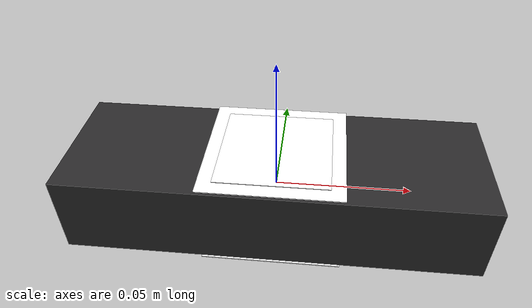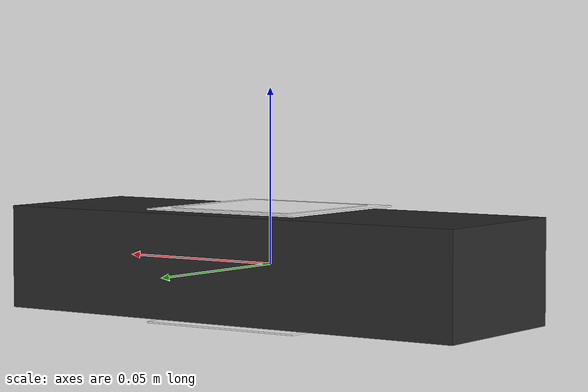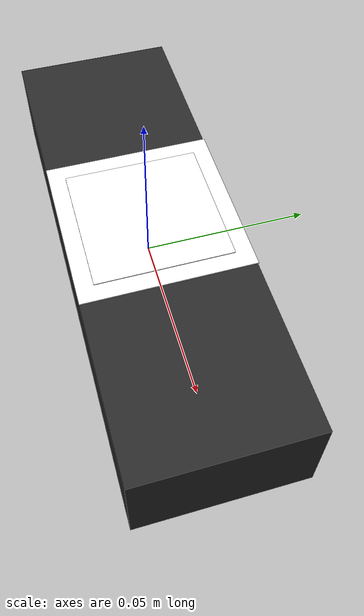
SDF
<?xml version="1.0" ?>
<sdf version="1.9">
  <model name="black_crate">
    <static>false</static>
    <link name="link">
      <inertial>
        <mass>0.17</mass>
        <inertia>
          <ixx>0.166</ixx>
          <iyy>0.166</iyy>
          <izz>0.166</izz>
          <ixy>0</ixy>
          <ixz>0</ixz>
          <iyz>0</iyz>
        </inertia>
      </inertial>

      <collision name="collision">
        <geometry>
          <box>
            <size>0.15 0.05 0.03</size>
          </box>
        </geometry>
        <surface>
          <friction>
            <ode>
              <mu>1.0</mu>
              <mu2>1.0</mu2>
            </ode>
          </friction>
        </surface>
      </collision>

      <visual name="side_faces">
        <geometry>
          <box>
            <size>0.15 0.05 0.03</size>
          </box>
        </geometry>
        <material>
          <ambient>0.165 0.161 0.165 1</ambient>
          <diffuse>0.165 0.161 0.165 1</diffuse>
        </material>
      </visual>

      <!-- ArUco Marker oben -->
      <visual name="marker_border">
        <pose>0 0 0.016 0 0 0</pose>
      <geometry>
        <box>
          <size>0.05 0.05 0.0004</size>
        </box>
      </geometry>
      <material>
        <diffuse>1 1 1 1</diffuse> <!-- Weiß -->
      </material>
    </visual>
      <visual name="aruco_marker">
        <pose>0 0 0.0162 0 0 0</pose>
        <geometry>
          <box>
            <size>0.04 0.04 0.0005</size>
          </box>
        </geometry>
        <material>
          <diffuse>1 1 1 1</diffuse>
          <pbr>
            <metal>
              <albedo_map>file://models/black_crate/aruco_41.png</albedo_map>
              <metalness>0.0</metalness>
              <roughness>0.8</roughness>
            </metal>
          </pbr>
        </material>
      </visual>

      <visual name="marker_border_down">
        <pose>0 0 -0.016 0 0 0</pose>
      <geometry>
        <box>
          <size>0.05 0.05 0.0004</size>
        </box>
      </geometry>
      <material>
        <diffuse>1 1 1 1</diffuse> <!-- Weiß -->
      </material>
    </visual>
      <visual name="aruco_marker_down">
        <pose>0 0 -0.0162 3.141 0 0</pose>
        <geometry>
          <box>
            <size>0.04 0.04 0.0005</size>
          </box>
        </geometry>
        <material>
          <diffuse>1 1 1 1</diffuse>
          <pbr>
            <metal>
              <albedo_map>file://models/black_crate/aruco_41.png</albedo_map>
              <metalness>0.0</metalness>
              <roughness>0.8</roughness>
            </metal>
          </pbr>
        </material>
      </visual>

    </link>
  </model>
</sdf>
